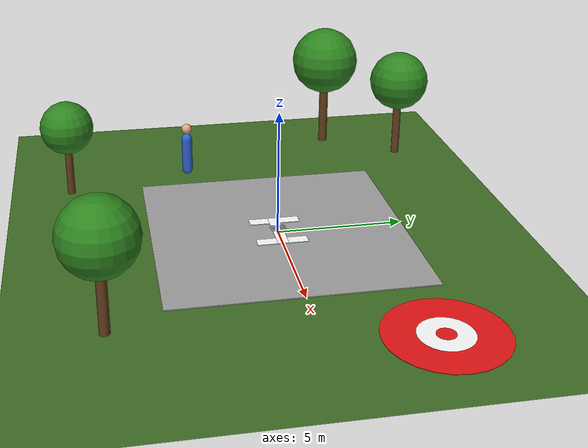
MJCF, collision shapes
<mujoco model="Skydio X2 Mission">

  <!-- Include official Skydio X2 model -->
  <include file="mujoco_menagerie/skydio_x2/x2.xml"/>

  <statistic meansize=".05"/>

  <!-- Visual settings for dual rendering -->
  <visual>
    <global offwidth="1280" offheight="720"
            azimuth="-20" elevation="-20" ellipsoidinertia="true"/>
    <headlight diffuse="0.6 0.6 0.6" ambient="0.3 0.3 0.3" specular="0 0 0"/>
    <rgba haze="0.15 0.25 0.35 1"/>
  </visual>

  <asset>
    <!-- Skybox -->
    <texture type="skybox" builtin="gradient"
             rgb1="0.52 0.72 0.92" rgb2="0.05 0.10 0.25"
             width="512" height="3072"/>
    <!-- Ground -->
    <texture type="2d" name="grass_tex" builtin="gradient"
             rgb1=".28 .48 .18" rgb2=".22 .38 .12"
             width="256" height="256"/>
    <texture type="2d" name="concrete_tex" builtin="flat"
             rgb1=".62 .62 .62" rgb2=".52 .52 .52"
             width="128" height="128"/>
    <material name="grass_mat"    texture="grass_tex"    texrepeat="30 30"/>
    <material name="concrete_mat" texture="concrete_tex" texrepeat="6 6" reflectance="0.15"/>
    <material name="marker_white" rgba="1 1 1 1"         reflectance="0.25"/>
    <material name="marker_red"   rgba=".90 .08 .08 1"   reflectance="0.1"/>
    <material name="marker_yel"   rgba=".95 .85 .05 1"/>
    <material name="tree_bark"    rgba=".38 .24 .10 1"/>
    <material name="tree_leaves"  rgba=".18 .52 .12 1"/>
    <material name="person_suit"  rgba=".18 .38 .80 1"/>
    <material name="person_skin"  rgba=".85 .65 .50 1"/>
  </asset>

  <worldbody>

    <!-- ── Lighting ──────────────────────────────────────────────────── -->
    <light name="sun" directional="true" pos="0 0 10"
           dir="-.3 -.2 -1" diffuse=".9 .85 .75" specular=".2 .2 .15"
           castshadow="true"/>
    <light name="fill" directional="true" pos="0 0 5" dir="0 0 -1"
           diffuse=".3 .35 .4" specular="0 0 0" castshadow="false"/>

    <!-- ── Ground ───────────────────────────────────────────────────── -->
    <geom name="ground" type="plane" size="80 80 .1"
          material="grass_mat" pos="0 0 0"/>

    <!-- ── Concrete launch/landing pad ──────────────────────────────── -->
    <geom name="pad" type="box" size="5 5 .02"
          material="concrete_mat" pos="0 0 .02"
          contype="0" conaffinity="0"/>

    <!-- ── H-marker (landing pad) ────────────────────────────────────── -->
    <geom name="h_left"  type="box" size=".22 1.0 .022"
          material="marker_white" pos="-0.85 0 .042"
          contype="0" conaffinity="0"/>
    <geom name="h_right" type="box" size=".22 1.0 .022"
          material="marker_white" pos=" 0.85 0 .042"
          contype="0" conaffinity="0"/>
    <geom name="h_bar"   type="box" size="1.07 .22 .022"
          material="marker_white" pos="0 0 .042"
          contype="0" conaffinity="0"/>

    <!-- ── Drop/target circle (8m east, 4m north) ──────────────────── -->
    <geom name="drop_ring_outer" type="cylinder" size="2.2 .008"
          material="marker_red" pos="8 4 .028"
          contype="0" conaffinity="0"/>
    <geom name="drop_ring_inner" type="cylinder" size="1.0 .010"
          material="marker_white" pos="8 4 .030"
          contype="0" conaffinity="0"/>
    <geom name="drop_bullseye"   type="cylinder" size=".35 .012"
          material="marker_red" pos="8 4 .032"
          contype="0" conaffinity="0"/>

    <!-- ── Obstacle: Tree cluster ───────────────────────────────────── -->
    <geom name="tr1_trunk" type="cylinder" size=".20 1.4" material="tree_bark"  pos="-9  4 1.4"/>
    <geom name="tr1_top"   type="sphere"   size="1.5"     material="tree_leaves" pos="-9  4 4.0"/>
    <geom name="tr2_trunk" type="cylinder" size=".18 1.2" material="tree_bark"  pos="-7  7 1.2"/>
    <geom name="tr2_top"   type="sphere"   size="1.3"     material="tree_leaves" pos="-7  7 3.5"/>
    <geom name="tr3_trunk" type="cylinder" size=".16 1.0" material="tree_bark"  pos="-5 -8 1.0"/>
    <geom name="tr3_top"   type="sphere"   size="1.1"     material="tree_leaves" pos="-5 -8 3.0"/>
    <geom name="tr4_trunk" type="cylinder" size=".19 1.3" material="tree_bark"  pos=" 6 -7 1.3"/>
    <geom name="tr4_top"   type="sphere"   size="1.4"     material="tree_leaves" pos=" 6 -7 3.6"/>

    <!-- ── Person target ────────────────────────────────────────────── -->
    <geom name="person_body" type="capsule" size=".22 .7"
          material="person_suit" pos="-5 -3 1.45"/>
    <geom name="person_head" type="sphere"  size=".22"
          material="person_skin" pos="-5 -3 2.6"/>

  </worldbody>

</mujoco>

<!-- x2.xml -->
<mujoco model="Skydio X2">
  <compiler autolimits="true"/>

  <option timestep="0.01" density="1.225" viscosity="1.8e-5"/>

  <default>
    <default class="x2">
      <geom mass="0"/>
      <motor ctrlrange="0 13"/>
      <mesh scale="0.01 0.01 0.01"/>
      <default class="visual">
        <geom group="2" type="mesh" contype="0" conaffinity="0"/>
      </default>
      <default class="collision">
        <geom group="3" type="box"/>
        <default class="rotor">
          <geom type="ellipsoid" size=".13 .13 .01"/>
        </default>
      </default>
      <site group="5"/>
    </default>
  </default>

  <asset>
    <texture type="2d" file="assets/X2_lowpoly_texture_SpinningProps_1024.png"/>
    <material name="phong3SG" texture="X2_lowpoly_texture_SpinningProps_1024"/>
    <material name="invisible" rgba="0 0 0 0"/>

    <mesh class="x2" file="assets/X2_lowpoly.obj"/>
  </asset>

  <worldbody>
    <light name="spotlight" mode="targetbodycom" target="x2" pos="0 -1 2"/>
    <body name="x2" pos="0 0 0.1" childclass="x2">
      <freejoint/>
      <camera name="track" pos="-1 0 .5" xyaxes="0 -1 0 1 0 2" mode="trackcom"/>
      <site name="imu" pos="0 0 .02"/>
      <geom material="phong3SG" mesh="X2_lowpoly" class="visual" quat="0 0 1 1"/>
      <geom class="collision" size=".06 .027 .02" pos=".04 0 .02"/>
      <geom class="collision" size=".06 .027 .02" pos=".04 0 .06"/>
      <geom class="collision" size=".05 .027 .02" pos="-.07 0 .065"/>
      <geom class="collision" size=".023 .017 .01" pos="-.137 .008 .065" quat="1 0 0 1"/>
      <geom name="rotor1" class="rotor" pos="-.14 -.18 .05" mass=".25"/>
      <geom name="rotor2" class="rotor" pos="-.14 .18 .05" mass=".25"/>
      <geom name="rotor3" class="rotor" pos=".14 .18 .08" mass=".25"/>
      <geom name="rotor4" class="rotor" pos=".14 -.18 .08" mass=".25"/>
      <geom size=".16 .04 .02" pos="0 0 0.02" type="ellipsoid" mass=".325" class="visual" material="invisible"/>
      <site name="thrust1" pos="-.14 -.18 .05"/>
      <site name="thrust2" pos="-.14 .18 .05"/>
      <site name="thrust3" pos=".14 .18 .08"/>
      <site name="thrust4" pos=".14 -.18 .08"/>
    </body>
  </worldbody>

  <actuator>
    <motor class="x2" name="thrust1" site="thrust1" gear="0 0 1 0 0 -.0201"/>
    <motor class="x2" name="thrust2" site="thrust2" gear="0 0 1 0 0 .0201"/>
    <motor class="x2" name="thrust3" site="thrust3" gear="0 0 1 0 0 -.0201"/>
    <motor class="x2" name="thrust4" site="thrust4" gear="0 0 1 0 0 .0201"/>
  </actuator>

  <sensor>
    <gyro name="body_gyro" site="imu"/>
    <accelerometer name="body_linacc" site="imu"/>
    <framequat name="body_quat" objtype="site" objname="imu"/>
  </sensor>

  <keyframe>
    <key name="hover" qpos="0 0 .3 1 0 0 0" ctrl="3.2495625 3.2495625 3.2495625 3.2495625"/>
  </keyframe>
</mujoco>
